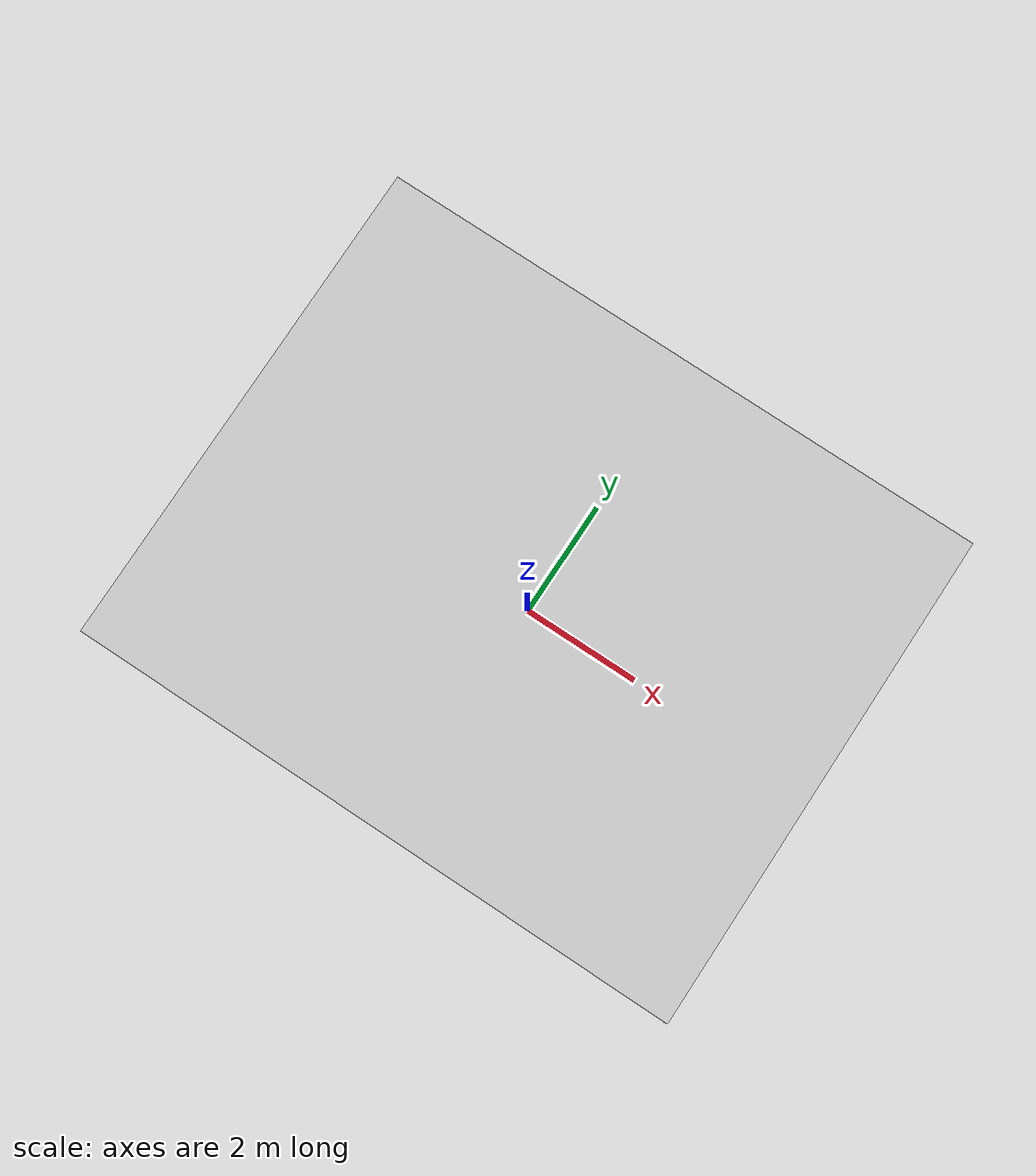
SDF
<?xml version="1.0" ?>
<sdf version="1.8">
  <model name="wrc_frame">
    <static>true</static>
    <link name="link">
      <inertial>
        <mass>1.0</mass>
      </inertial>

      <collision name="wall_front_left">
        <pose>-5.0 3.0 1.25 0.0 0.0 0.0</pose>
        <geometry>
          <box>
            <size>0.1 2.0 2.5</size>
          </box>
        </geometry>
      </collision>

      <visual name="wall_front_left_v">
        <pose>-5.0 3.0 1.25 0.0 0.0 0.0</pose>
        <geometry>
          <box>
            <size>0.1 2.0 2.5</size>
          </box>
        </geometry>

        <material>
          <diffuse>0.75 0.75 0.75 1.0</diffuse>
          <specular>0.2 0.2 0.2 1.0</specular>
        </material>
      </visual>

      <collision name="wall_front_center">
        <pose>-5.0 -0.5 1.25 0.0 0.0 0.0</pose>
        <geometry>
          <box>
            <size>0.1 3.0 2.5</size>
          </box>
        </geometry>
      </collision>

      <visual name="wall_front_center_v">
        <pose>-5.0 -0.5 1.25 0.0 0.0 0.0</pose>
        <geometry>
          <box>
            <size>0.1 3.0 2.5</size>
          </box>
        </geometry>

        <material>
          <diffuse>0.75 0.75 0.75 1.0</diffuse>
          <specular>0.2 0.2 0.2 1.0</specular>
        </material>
      </visual>

      <collision name="wall_front_right">
        <pose>-5.0 -3.5 1.25 0.0 0.0 0.0</pose>
        <geometry>
          <box>
            <size>0.1 1.0 2.5</size>
          </box>
        </geometry>
      </collision>

      <visual name="wall_front_right_v">
        <pose>-5.0 -3.5 1.25 0.0 0.0 0.0</pose>
        <geometry>
          <box>
            <size>0.1 1.0 2.5</size>
          </box>
        </geometry>

        <material>
          <diffuse>0.75 0.75 0.75 1.0</diffuse>
          <specular>0.2 0.2 0.2 1.0</specular>
        </material>
      </visual>

      <collision name="wall_side_right">
        <pose>0.0 -4.05 1.25 0.0 0.0 1.57</pose>
        <geometry>
          <box>
            <size>0.1 10.1 2.5</size>
          </box>
        </geometry>
      </collision>

      <visual name="wall_side_right_v">
        <pose>0.0 -4.05 1.25 0.0 0.0 1.57</pose>
        <geometry>
          <box>
            <size>0.1 10.1 2.5</size>
          </box>
        </geometry>

        <material>
          <diffuse>0.75 0.75 0.75 1.0</diffuse>
          <specular>0.2 0.2 0.2 1.0</specular>
        </material>
      </visual>

      <collision name="wall_side_left">
        <pose>0.0 4.05 1.25 0.0 0.0 1.57</pose>
        <geometry>
          <box>
            <size>0.1 10.1 2.5</size>
          </box>
        </geometry>
      </collision>

      <visual name="wall_side_left_v">
        <pose>0.0 4.05 1.25 0.0 0.0 1.57</pose>
        <geometry>
          <box>
            <size>0.1 10.1 2.5</size>
          </box>
        </geometry>

        <material>
          <diffuse>0.75 0.75 0.75 1.0</diffuse>
          <specular>0.2 0.2 0.2 1.0</specular>
        </material>
      </visual>

      <collision name="wall_back">
        <pose>5.0 0.0 1.25 0.0 0.0 0.0</pose>
        <geometry>
          <box>
            <size>0.1 8.0 2.5</size>
          </box>
        </geometry>
      </collision>

      <visual name="wall_back_v">
        <pose>5.0 0.0 1.25 0.0 0.0 0.0</pose>
        <geometry>
          <box>
            <size>0.1 8.0 2.5</size>
          </box>
        </geometry>

        <material>
          <diffuse>0.75 0.75 0.75 1.0</diffuse>
          <specular>0.2 0.2 0.2 1.0</specular>
        </material>
      </visual>

      <collision name="inside_wall_side_left">
        <pose>0.0 3.5 1.25 0.0 0.0 0.0</pose>
        <geometry>
          <box>
            <size>0.1 1.0 2.5</size>
          </box>
        </geometry>
      </collision>

      <visual name="inside_wall_side_left_v">
        <pose>0.0 3.5 1.25 0.0 0.0 0.0</pose>
        <geometry>
          <box>
            <size>0.1 1.0 2.5</size>
          </box>
        </geometry>

        <material>
          <diffuse>0.75 0.75 0.75 1.0</diffuse>
          <specular>0.2 0.2 0.2 1.0</specular>
        </material>
      </visual>

      <collision name="inside_wall_side_right">
        <pose>0.0 -3.5 1.25 0.0 0.0 0.0</pose>
        <geometry>
          <box>
            <size>0.1 1.0 2.5</size>
          </box>
        </geometry>
      </collision>

      <visual name="inside_wall_side_right_v">
        <pose>0.0 -3.5 1.25 0.0 0.0 0.0</pose>
        <geometry>
          <box>
            <size>0.1 1.0 2.5</size>
          </box>
        </geometry>

        <material>
          <diffuse>0.75 0.75 0.75 1.0</diffuse>
          <specular>0.2 0.2 0.2 1.0</specular>
        </material>
      </visual>

      <collision name="inside_wall_front">
        <pose>-4.0 0.0 1.25 0.0 0.0 1.57</pose>
        <geometry>
          <box>
            <size>0.1 2.0 2.5</size>
          </box>
        </geometry>
      </collision>

      <visual name="inside_wall_front_v">
        <pose>-4.0 0.0 1.25 0.0 0.0 1.57</pose>
        <geometry>
          <box>
            <size>0.1 2.0 2.5</size>
          </box>
        </geometry>

        <material>
          <diffuse>0.75 0.75 0.75 1.0</diffuse>
          <specular>0.2 0.2 0.2 1.0</specular>
        </material>
      </visual>

      <collision name="inside_wall_back">
        <pose>-4.0 0.0 1.25 0.0 0.0 1.57</pose>
        <geometry>
          <box>
            <size>0.1 2.0 2.5</size>
          </box>
        </geometry>
      </collision>

      <visual name="inside_wall_back_v">
        <pose>-4.0 0.0 1.25 0.0 0.0 1.57</pose>
        <geometry>
          <box>
            <size>0.1 2.0 2.5</size>
          </box>
        </geometry>

        <material>
          <diffuse>0.75 0.75 0.75 1.0</diffuse>
          <specular>0.2 0.2 0.2 1.0</specular>
        </material>
      </visual>

      <collision name="inside_wall_center_horizontal">
        <pose>0.0 0.0 1.25 0.0 0.0 0.0</pose>
        <geometry>
          <box>
            <size>0.1 2.0 2.5</size>
          </box>
        </geometry>
      </collision>

      <visual name="inside_wall_center_horizontal_v">
        <pose>0.0 0.0 1.25 0.0 0.0 0.0</pose>
        <geometry>
          <box>
            <size>0.1 2.0 2.5</size>
          </box>
        </geometry>

        <material>
          <diffuse>0.75 0.75 0.75 1.0</diffuse>
          <specular>0.2 0.2 0.2 1.0</specular>
        </material>
      </visual>

      <collision name="inside_wall_center_vertical_front">
        <pose>-0.525 0.0 1.25 0.0 0.0 1.57</pose>
        <geometry>
          <box>
            <size>0.1 0.95 2.5</size>
          </box>
        </geometry>
      </collision>

      <visual name="inside_wall_center_vertical_front_v">
        <pose>-0.525 0.0 1.25 0.0 0.0 1.57</pose>
        <geometry>
          <box>
            <size>0.1 0.95 2.5</size>
          </box>
        </geometry>

        <material>
          <diffuse>0.75 0.75 0.75 1.0</diffuse>
          <specular>0.2 0.2 0.2 1.0</specular>
        </material>
      </visual>

      <collision name="inside_wall_center_vertical_back">
        <pose>2.025 0.0 1.25 0.0 0.0 1.57</pose>
        <geometry>
          <box>
            <size>0.1 3.95 2.5</size>
          </box>
        </geometry>
      </collision>

      <visual name="inside_wall_center_vertical_back_v">
        <pose>2.025 0.0 1.25 0.0 0.0 1.57</pose>
        <geometry>
          <box>
            <size>0.1 3.95 2.5</size>
          </box>
        </geometry>

        <material>
          <diffuse>0.75 0.75 0.75 1.0</diffuse>
          <specular>0.2 0.2 0.2 1.0</specular>
        </material>
      </visual>

      <collision name="ceiling">
        <pose>0.0 0.0 2.55 0.0 0.0 0.0</pose>
        <geometry>
          <box>
            <size>10.1 8.2 0.1</size>
          </box>
        </geometry>
      </collision>

      <visual name="ceiling_v">
        <pose>0.0 0.0 2.55 0.0 0.0 0.0</pose>
        <geometry>
          <box>
            <size>10.1 8.2 0.1</size>
          </box>
        </geometry>

        <material>
          <diffuse>0.75 0.75 0.75 1.0</diffuse>
          <specular>0.2 0.2 0.2 1.0</specular>
        </material>
      </visual>

      <light type="point" name="ceiling_light_fl">
        <pose>-3.0 2.0 2.4 0.0 0.0 0.0</pose>
        <cast_shadows>false</cast_shadows>
        <diffuse>0.7 0.7 0.68 1.0</diffuse>
        <specular>0.15 0.15 0.15 1.0</specular>
        <attenuation>
          <range>12.0</range>
          <constant>0.4</constant>
          <linear>0.08</linear>
          <quadratic>0.005</quadratic>
        </attenuation>
      </light>

      <light type="point" name="ceiling_light_fr">
        <pose>-3.0 -2.0 2.4 0.0 0.0 0.0</pose>
        <cast_shadows>false</cast_shadows>
        <diffuse>0.7 0.7 0.68 1.0</diffuse>
        <specular>0.15 0.15 0.15 1.0</specular>
        <attenuation>
          <range>12.0</range>
          <constant>0.4</constant>
          <linear>0.08</linear>
          <quadratic>0.005</quadratic>
        </attenuation>
      </light>

      <light type="point" name="ceiling_light_cl">
        <pose>0.0 2.0 2.4 0.0 0.0 0.0</pose>
        <cast_shadows>false</cast_shadows>
        <diffuse>0.7 0.7 0.68 1.0</diffuse>
        <specular>0.15 0.15 0.15 1.0</specular>
        <attenuation>
          <range>12.0</range>
          <constant>0.4</constant>
          <linear>0.08</linear>
          <quadratic>0.005</quadratic>
        </attenuation>
      </light>

      <light type="point" name="ceiling_light_cr">
        <pose>0.0 -2.0 2.4 0.0 0.0 0.0</pose>
        <cast_shadows>false</cast_shadows>
        <diffuse>0.7 0.7 0.68 1.0</diffuse>
        <specular>0.15 0.15 0.15 1.0</specular>
        <attenuation>
          <range>12.0</range>
          <constant>0.4</constant>
          <linear>0.08</linear>
          <quadratic>0.005</quadratic>
        </attenuation>
      </light>

      <light type="point" name="ceiling_light_bl">
        <pose>3.0 2.0 2.4 0.0 0.0 0.0</pose>
        <cast_shadows>false</cast_shadows>
        <diffuse>0.7 0.7 0.68 1.0</diffuse>
        <specular>0.15 0.15 0.15 1.0</specular>
        <attenuation>
          <range>12.0</range>
          <constant>0.4</constant>
          <linear>0.08</linear>
          <quadratic>0.005</quadratic>
        </attenuation>
      </light>

      <light type="point" name="ceiling_light_br">
        <pose>3.0 -2.0 2.4 0.0 0.0 0.0</pose>
        <cast_shadows>false</cast_shadows>
        <diffuse>0.7 0.7 0.68 1.0</diffuse>
        <specular>0.15 0.15 0.15 1.0</specular>
        <attenuation>
          <range>12.0</range>
          <constant>0.4</constant>
          <linear>0.08</linear>
          <quadratic>0.005</quadratic>
        </attenuation>
      </light>

    </link>
  </model>
</sdf>
